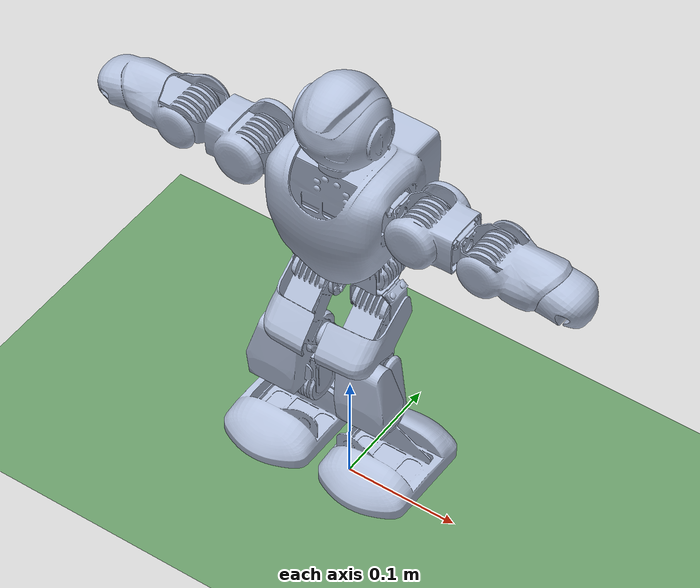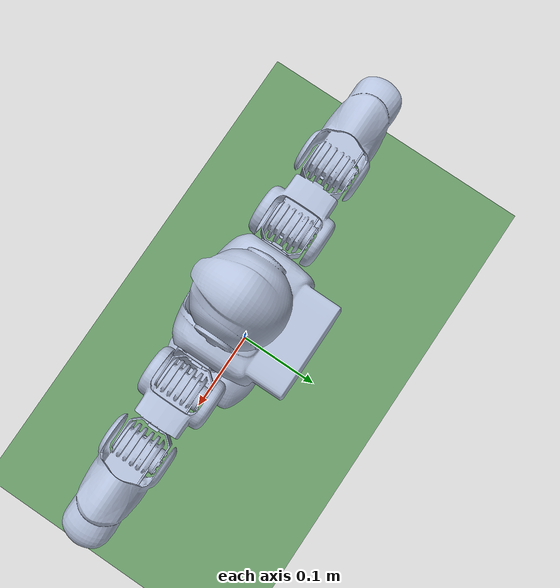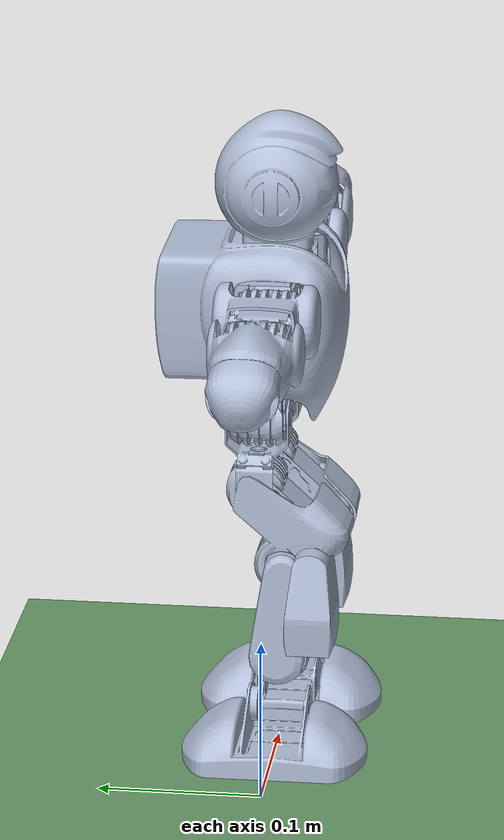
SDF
<?xml version="1.0" ?>
<sdf version="1.8">
  <world name="alpha1s_world">

    <!-- ── Plugins del mundo ── -->
    <plugin filename="ignition-gazebo-physics-system"
            name="gz::sim::systems::Physics"/>
    <plugin filename="ignition-gazebo-scene-broadcaster-system"
            name="gz::sim::systems::SceneBroadcaster"/>
    <plugin filename="ignition-gazebo-user-commands-system"
            name="gz::sim::systems::UserCommands"/>
    <plugin filename="ignition-gazebo-imu-system"
            name="gz::sim::systems::Imu"/>
    <plugin filename="ignition-gazebo-sensors-system"
            name="gz::sim::systems::Sensors">
      <render_engine>ogre</render_engine>
    </plugin>
    <plugin filename="ignition-gazebo-contact-system"
            name="gz::sim::systems::Contact"/>

    <!-- ── Luz ── -->
    <light type="directional" name="sun">
      <cast_shadows>false</cast_shadows>
      <pose>0 0 10 0 0 0</pose>
      <diffuse>1 1 1 1</diffuse>
      <specular>0.8 0.8 0.8 1</specular>
      <attenuation>
        <range>1000</range><constant>1.0</constant>
        <linear>0.0</linear><quadratic>0.0</quadratic>
      </attenuation>
      <direction>0 0 -1</direction>
    </light>
    <light type="directional" name="fill">
      <cast_shadows>false</cast_shadows>
      <pose>0 0 5 0 0 0</pose>
      <diffuse>0.6 0.6 0.6 1</diffuse>
      <specular>0.0 0.0 0.0 1</specular>
      <attenuation>
        <range>1000</range><constant>1.0</constant>
        <linear>0.0</linear><quadratic>0.0</quadratic>
      </attenuation>
      <direction>0 0.5 -0.5</direction>
    </light>

    <!-- ── Suelo ── -->
    <model name="ground_plane">
      <static>true</static>
      <link name="link">
        <collision name="collision">
          <geometry><plane><normal>0 0 1</normal><size>100 100</size></plane></geometry>
          <surface><friction><ode><mu>1.0</mu><mu2>1.0</mu2></ode></friction></surface>
        </collision>
        <visual name="visual">
          <geometry><plane><normal>0 0 1</normal><size>100 100</size></plane></geometry>
          <material>
            <ambient>0.4 0.6 0.4 1</ambient>
            <diffuse>0.4 0.6 0.4 1</diffuse>
            <specular>0.1 0.1 0.1 1</specular>
          </material>
        </visual>
      </link>
    </model>

    <!-- ================================================================
         ALPHA 1S ROBOT
         ================================================================ -->
    <model name="alpha1s">
      <pose>0 0 0.30 0 0 0</pose>
      <self_collide>false</self_collide>

      <!-- ── BASE LINK (torso) ── -->
      <link name="base_link">
        <pose>0 0 0 0 0 0</pose>
        <inertial>
          <mass>0.5923</mass>
          <inertia><ixx>0.003120</ixx><ixy>0</ixy><ixz>0</ixz>
                   <iyy>0.001890</iyy><iyz>0</iyz><izz>0.002410</izz></inertia>
        </inertial>
        <visual name="visual">
          <geometry><mesh><uri>model://alpha1s_bringup/meshes/visual/base_link.stl</uri></mesh></geometry>
          <material>
            <ambient>0.7 0.75 0.85 1</ambient>
            <diffuse>0.7 0.75 0.85 1</diffuse>
            <specular>0.4 0.4 0.4 1</specular>
          </material>
        </visual>
        <collision name="collision">
          <pose>0 -0.005 0 0 0 0</pose>
          <geometry>
            <sphere>
              <radius>0.08</radius>
            </sphere>
          </geometry>
        </collision>

        <!-- IMU sensor -->
        <sensor name="imu_sensor" type="imu">
          <always_on>1</always_on>
          <update_rate>200</update_rate>
          <topic>/alpha1s/imu</topic>
          <imu>
            <angular_velocity>
              <x><noise type="gaussian"><mean>0</mean><stddev>0.002</stddev></noise></x>
              <y><noise type="gaussian"><mean>0</mean><stddev>0.002</stddev></noise></y>
              <z><noise type="gaussian"><mean>0</mean><stddev>0.002</stddev></noise></z>
            </angular_velocity>
            <linear_acceleration>
              <x><noise type="gaussian"><mean>0</mean><stddev>0.017</stddev></noise></x>
              <y><noise type="gaussian"><mean>0</mean><stddev>0.017</stddev></noise></y>
              <z><noise type="gaussian"><mean>0</mean><stddev>0.017</stddev></noise></z>
            </linear_acceleration>
          </imu>
        </sensor>
      </link>

      <!-- ── CABEZA ── -->
      <link name="Head_link">
        <pose relative_to="neck_joint">0 0 0 0 0 0</pose>
        <inertial><mass>0.2257</mass>
          <inertia><ixx>0.000520</ixx><ixy>0</ixy><ixz>0</ixz>
                   <iyy>0.000480</iyy><iyz>0</iyz><izz>0.000310</izz></inertia>
        </inertial>
        <visual name="visual">
          <geometry><mesh><uri>model://alpha1s_bringup/meshes/visual/Head_link.stl</uri></mesh></geometry>
          <material>
            <ambient>0.7 0.75 0.85 1</ambient>
            <diffuse>0.7 0.75 0.85 1</diffuse>
            <specular>0.4 0.4 0.4 1</specular>
          </material>
        </visual>
        <collision name="collision">
          <geometry><mesh><uri>model://alpha1s_bringup/meshes/collision/Head_link.stl</uri></mesh></geometry>
        </collision>
      </link>
      <joint name="neck_joint" type="revolute">
        <pose relative_to="base_link">-0.000228 -0.009340 0.057200 0 0 0</pose>
        <parent>base_link</parent><child>Head_link</child>
        <axis><xyz>0 0 1</xyz>
          <limit><lower>-1.047</lower><upper>1.047</upper><effort>2.5</effort><velocity>6.28</velocity></limit>
          <dynamics><damping>0.05</damping><friction>0.01</friction></dynamics>
        </axis>
      </joint>

      <!-- ── BRAZO IZQUIERDO ── -->
      <link name="l_shoulder_link">
        <pose relative_to="l_shoulder_joint">0 0 0 0 0 0</pose>
        <inertial><mass>0.0613</mass>
          <inertia><ixx>0.000048</ixx><ixy>0</ixy><ixz>0</ixz>
                   <iyy>0.000052</iyy><iyz>0</iyz><izz>0.000031</izz></inertia>
        </inertial>
        <visual name="visual"><geometry><mesh><uri>model://alpha1s_bringup/meshes/visual/l_shoulder_link.stl</uri></mesh></geometry>          <material>
            <ambient>0.7 0.75 0.85 1</ambient>
            <diffuse>0.7 0.75 0.85 1</diffuse>
            <specular>0.4 0.4 0.4 1</specular>
          </material></visual>
        <collision name="collision"><geometry><mesh><uri>model://alpha1s_bringup/meshes/collision/l_shoulder_link.stl</uri></mesh></geometry></collision>
      </link>
      <joint name="l_shoulder_joint" type="revolute">
        <pose relative_to="base_link">0.055000 -0.011620 0.029880 0 0 0</pose>
        <parent>base_link</parent><child>l_shoulder_link</child>
        <axis><xyz>1 0 0</xyz>
          <limit><lower>-1.745</lower><upper>1.745</upper><effort>2.5</effort><velocity>6.28</velocity></limit>
          <dynamics><damping>0.05</damping><friction>0.01</friction></dynamics>
        </axis>
      </joint>

      <link name="l_arm_link">
        <pose relative_to="l_arm_joint">0 0 0 0 0 0</pose>
        <inertial><mass>0.0787</mass>
          <inertia><ixx>0.000180</ixx><ixy>0</ixy><ixz>0</ixz>
                   <iyy>0.000120</iyy><iyz>0</iyz><izz>0.000095</izz></inertia>
        </inertial>
        <visual name="visual"><geometry><mesh><uri>model://alpha1s_bringup/meshes/visual/l_arm_link.stl</uri></mesh></geometry>          <material>
            <ambient>0.7 0.75 0.85 1</ambient>
            <diffuse>0.7 0.75 0.85 1</diffuse>
            <specular>0.4 0.4 0.4 1</specular>
          </material></visual>
        <collision name="collision"><geometry><mesh><uri>model://alpha1s_bringup/meshes/collision/l_arm_link.stl</uri></mesh></geometry></collision>
      </link>
      <joint name="l_arm_joint" type="revolute">
        <pose relative_to="l_shoulder_link">0.021170 0.018730 -0.000040 0 0 0</pose>
        <parent>l_shoulder_link</parent><child>l_arm_link</child>
        <axis><xyz>0 1 0</xyz>
          <limit><lower>-1.571</lower><upper>1.571</upper><effort>2.5</effort><velocity>6.28</velocity></limit>
          <dynamics><damping>0.05</damping><friction>0.01</friction></dynamics>
        </axis>
      </joint>

      <link name="l_forearm_link">
        <pose relative_to="l_elbow_joint">0 0 0 0 0 0</pose>
        <inertial><mass>0.1040</mass>
          <inertia><ixx>0.000210</ixx><ixy>0</ixy><ixz>0</ixz>
                   <iyy>0.000310</iyy><iyz>0</iyz><izz>0.000140</izz></inertia>
        </inertial>
        <visual name="visual"><geometry><mesh><uri>model://alpha1s_bringup/meshes/visual/l_forearm_link.stl</uri></mesh></geometry>          <material>
            <ambient>0.7 0.75 0.85 1</ambient>
            <diffuse>0.7 0.75 0.85 1</diffuse>
            <specular>0.4 0.4 0.4 1</specular>
          </material></visual>
        <collision name="collision"><geometry><mesh><uri>model://alpha1s_bringup/meshes/collision/l_forearm_link.stl</uri></mesh></geometry></collision>
      </link>
      <joint name="l_elbow_joint" type="revolute">
        <pose relative_to="l_arm_link">0.059180 -0.003730 -0.000390 0 0 0</pose>
        <parent>l_arm_link</parent><child>l_forearm_link</child>
        <axis><xyz>0 1 0</xyz>
          <limit><lower>-1.571</lower><upper>1.571</upper><effort>2.5</effort><velocity>6.28</velocity></limit>
          <dynamics><damping>0.05</damping><friction>0.01</friction></dynamics>
        </axis>
      </joint>

      <!-- ── BRAZO DERECHO ── -->
      <link name="r_shoulder_link">
        <pose relative_to="r_shoulder_joint">0 0 0 0 0 0</pose>
        <inertial><mass>0.0613</mass>
          <inertia><ixx>0.000048</ixx><ixy>0</ixy><ixz>0</ixz>
                   <iyy>0.000052</iyy><iyz>0</iyz><izz>0.000031</izz></inertia>
        </inertial>
        <visual name="visual"><geometry><mesh><uri>model://alpha1s_bringup/meshes/visual/r_shoulder_link.stl</uri></mesh></geometry>          <material>
            <ambient>0.7 0.75 0.85 1</ambient>
            <diffuse>0.7 0.75 0.85 1</diffuse>
            <specular>0.4 0.4 0.4 1</specular>
          </material></visual>
        <collision name="collision"><geometry><mesh><uri>model://alpha1s_bringup/meshes/collision/r_shoulder_link.stl</uri></mesh></geometry></collision>
      </link>
      <joint name="r_shoulder_joint" type="revolute">
        <pose relative_to="base_link">-0.055000 -0.011620 0.029880 0 0 0</pose>
        <parent>base_link</parent><child>r_shoulder_link</child>
        <axis><xyz>1 0 0</xyz>
          <limit><lower>-1.745</lower><upper>1.745</upper><effort>2.5</effort><velocity>6.28</velocity></limit>
          <dynamics><damping>0.05</damping><friction>0.01</friction></dynamics>
        </axis>
      </joint>

      <link name="r_arm_link">
        <pose relative_to="r_arm_joint">0 0 0 0 0 0</pose>
        <inertial><mass>0.0787</mass>
          <inertia><ixx>0.000180</ixx><ixy>0</ixy><ixz>0</ixz>
                   <iyy>0.000120</iyy><iyz>0</iyz><izz>0.000095</izz></inertia>
        </inertial>
        <visual name="visual"><geometry><mesh><uri>model://alpha1s_bringup/meshes/visual/r_arm_link.stl</uri></mesh></geometry>          <material>
            <ambient>0.7 0.75 0.85 1</ambient>
            <diffuse>0.7 0.75 0.85 1</diffuse>
            <specular>0.4 0.4 0.4 1</specular>
          </material></visual>
        <collision name="collision"><geometry><mesh><uri>model://alpha1s_bringup/meshes/collision/r_arm_link.stl</uri></mesh></geometry></collision>
      </link>
      <joint name="r_arm_joint" type="revolute">
        <pose relative_to="r_shoulder_link">-0.021170 0.018730 -0.000040 0 0 0</pose>
        <parent>r_shoulder_link</parent><child>r_arm_link</child>
        <axis><xyz>0 1 0</xyz>
          <limit><lower>-1.571</lower><upper>1.571</upper><effort>2.5</effort><velocity>6.28</velocity></limit>
          <dynamics><damping>0.05</damping><friction>0.01</friction></dynamics>
        </axis>
      </joint>

      <link name="r_forearm_link">
        <pose relative_to="r_elbow_joint">0 0 0 0 0 0</pose>
        <inertial><mass>0.1040</mass>
          <inertia><ixx>0.000210</ixx><ixy>0</ixy><ixz>0</ixz>
                   <iyy>0.000310</iyy><iyz>0</iyz><izz>0.000140</izz></inertia>
        </inertial>
        <visual name="visual"><geometry><mesh><uri>model://alpha1s_bringup/meshes/visual/r_forearm_link.stl</uri></mesh></geometry>          <material>
            <ambient>0.7 0.75 0.85 1</ambient>
            <diffuse>0.7 0.75 0.85 1</diffuse>
            <specular>0.4 0.4 0.4 1</specular>
          </material></visual>
        <collision name="collision"><geometry><mesh><uri>model://alpha1s_bringup/meshes/collision/r_forearm_link.stl</uri></mesh></geometry></collision>
      </link>
      <joint name="r_elbow_joint" type="revolute">
        <pose relative_to="r_arm_link">-0.059180 -0.003730 -0.000390 0 0 0</pose>
        <parent>r_arm_link</parent><child>r_forearm_link</child>
        <axis><xyz>0 1 0</xyz>
          <limit><lower>-1.571</lower><upper>1.571</upper><effort>2.5</effort><velocity>6.28</velocity></limit>
          <dynamics><damping>0.05</damping><friction>0.01</friction></dynamics>
        </axis>
      </joint>

      <!-- ── PIERNA IZQUIERDA ── -->
      <link name="l_hip_roll_link">
        <pose relative_to="l_hip_roll_joint">0 0 0 0 0 0</pose>
        <inertial><mass>0.0618</mass>
          <inertia><ixx>0.000052</ixx><ixy>0</ixy><ixz>0</ixz>
                   <iyy>0.000048</iyy><iyz>0</iyz><izz>0.000038</izz></inertia>
        </inertial>
        <visual name="visual"><geometry><mesh><uri>model://alpha1s_bringup/meshes/visual/l_hip_roll_link.stl</uri></mesh></geometry>          <material>
            <ambient>0.7 0.75 0.85 1</ambient>
            <diffuse>0.7 0.75 0.85 1</diffuse>
            <specular>0.4 0.4 0.4 1</specular>
          </material></visual>
        <collision name="collision"><geometry><mesh><uri>model://alpha1s_bringup/meshes/collision/l_hip_roll_link.stl</uri></mesh></geometry></collision>
      </link>
      <joint name="l_hip_roll_joint" type="revolute">
        <pose relative_to="base_link">0.026530 -0.018220 -0.045170 0 0 0</pose>
        <parent>base_link</parent><child>l_hip_roll_link</child>
        <axis><xyz>0 1 0</xyz>
          <limit><lower>-1.571</lower><upper>0.524</upper><effort>2.5</effort><velocity>6.28</velocity></limit>
          <dynamics><damping>0.05</damping><friction>0.01</friction></dynamics>
        </axis>
      </joint>

      <link name="l_knee_link">
        <pose relative_to="l_hip_pitch_joint">0 0 0 0 0 0</pose>
        <inertial><mass>0.1035</mass>
          <inertia><ixx>0.000310</ixx><ixy>0</ixy><ixz>0</ixz>
                   <iyy>0.000850</iyy><iyz>0</iyz><izz>0.000620</izz></inertia>
        </inertial>
        <visual name="visual"><geometry><mesh><uri>model://alpha1s_bringup/meshes/visual/l_knee_link.stl</uri></mesh></geometry>          <material>
            <ambient>0.7 0.75 0.85 1</ambient>
            <diffuse>0.7 0.75 0.85 1</diffuse>
            <specular>0.4 0.4 0.4 1</specular>
          </material></visual>
        <collision name="collision"><geometry><mesh><uri>model://alpha1s_bringup/meshes/collision/l_knee_link.stl</uri></mesh></geometry></collision>
      </link>
      <joint name="l_hip_pitch_joint" type="revolute">
        <pose relative_to="l_hip_roll_link">-0.013140 0.014840 -0.044380 0 0 0</pose>
        <parent>l_hip_roll_link</parent><child>l_knee_link</child>
        <axis><xyz>1 0 0</xyz>
          <limit><lower>-1.571</lower><upper>1.571</upper><effort>2.5</effort><velocity>6.28</velocity></limit>
          <dynamics><damping>0.05</damping><friction>0.01</friction></dynamics>
        </axis>
      </joint>

      <!-- RENAMED: l_ankle_pitch_joint (link) → l_lower_leg_link -->
      <link name="l_lower_leg_link">
        <pose relative_to="l_knee_joint">0 0 0 0 0 0</pose>
        <inertial><mass>0.0493</mass>
          <inertia><ixx>0.000065</ixx><ixy>0</ixy><ixz>0</ixz>
                   <iyy>0.000082</iyy><iyz>0</iyz><izz>0.000058</izz></inertia>
        </inertial>
        <visual name="visual"><geometry><mesh><uri>model://alpha1s_bringup/meshes/visual/l_lower_leg_link.stl</uri></mesh></geometry>          <material>
            <ambient>0.7 0.75 0.85 1</ambient>
            <diffuse>0.7 0.75 0.85 1</diffuse>
            <specular>0.4 0.4 0.4 1</specular>
          </material></visual>
        <collision name="collision"><geometry><mesh><uri>model://alpha1s_bringup/meshes/collision/l_lower_leg_link.stl</uri></mesh></geometry></collision>
      </link>
      <joint name="l_knee_joint" type="revolute">
        <pose relative_to="l_knee_link">-0.005660 -0.014250 -0.044230 0 0 0</pose>
        <parent>l_knee_link</parent><child>l_lower_leg_link</child>
        <axis><xyz>1 0 0</xyz>
          <limit><lower>-1.325</lower><upper>1.571</upper><effort>2.5</effort><velocity>6.28</velocity></limit>
          <dynamics><damping>0.05</damping><friction>0.01</friction></dynamics>
        </axis>
      </joint>

      <link name="l_ankle_link">
        <pose relative_to="l_ankle_pitch_joint">0 0 0 0 0 0</pose>
        <inertial><mass>0.0529</mass>
          <inertia><ixx>0.000048</ixx><ixy>0</ixy><ixz>0</ixz>
                   <iyy>0.000062</iyy><iyz>0</iyz><izz>0.000041</izz></inertia>
        </inertial>
        <visual name="visual"><geometry><mesh><uri>model://alpha1s_bringup/meshes/visual/l_ankle_link.stl</uri></mesh></geometry>          <material>
            <ambient>0.7 0.75 0.85 1</ambient>
            <diffuse>0.7 0.75 0.85 1</diffuse>
            <specular>0.4 0.4 0.4 1</specular>
          </material></visual>
        <collision name="collision"><geometry><mesh><uri>model://alpha1s_bringup/meshes/collision/l_ankle_link.stl</uri></mesh></geometry></collision>
      </link>
      <!-- RENAMED: l_ankle_pitch_joint_joint → l_ankle_pitch_joint -->
      <joint name="l_ankle_pitch_joint" type="revolute">
        <pose relative_to="l_lower_leg_link">0.001250 0.002250 -0.058450 0 0 0</pose>
        <parent>l_lower_leg_link</parent><child>l_ankle_link</child>
        <axis><xyz>1 0 0</xyz>
          <limit><lower>-1.047</lower><upper>1.047</upper><effort>2.5</effort><velocity>6.28</velocity></limit>
          <dynamics><damping>0.05</damping><friction>0.01</friction></dynamics>
        </axis>
      </joint>

      <link name="l_foot_link">
        <pose relative_to="l_ankle_roll_joint">0 0 0 0 0 0</pose>
        <inertial><mass>0.1211</mass>
          <inertia><ixx>0.000240</ixx><ixy>0</ixy><ixz>0</ixz>
                   <iyy>0.000380</iyy><iyz>0</iyz><izz>0.000190</izz></inertia>
        </inertial>
        <visual name="visual"><geometry><mesh><uri>model://alpha1s_bringup/meshes/visual/l_foot_link.stl</uri></mesh></geometry>          <material>
            <ambient>0.7 0.75 0.85 1</ambient>
            <diffuse>0.7 0.75 0.85 1</diffuse>
            <specular>0.4 0.4 0.4 1</specular>
          </material></visual>
        <collision name="collision">
          <geometry><mesh><uri>model://alpha1s_bringup/meshes/collision/l_foot_link.stl</uri></mesh></geometry>
          <surface><friction><ode><mu>0.9</mu><mu2>0.8</mu2></ode></friction></surface>
        </collision>
        <!-- Sensor de contacto pie izquierdo -->
        <sensor name="l_foot_contact_sensor" type="contact">
          <always_on>true</always_on>
          <update_rate>100</update_rate>
          <topic>foot_contact/left</topic>
          <contact>
            <collision>collision</collision>
          </contact>
        </sensor>
      </link>
      <joint name="l_ankle_roll_joint" type="revolute">
        <pose relative_to="l_ankle_link">0.012350 -0.012880 -0.037490 0 0 0</pose>
        <parent>l_ankle_link</parent><child>l_foot_link</child>
        <axis><xyz>0 1 0</xyz>
          <limit><lower>-0.349</lower><upper>1.396</upper><effort>2.5</effort><velocity>6.28</velocity></limit>
          <dynamics><damping>0.05</damping><friction>0.01</friction></dynamics>
        </axis>
      </joint>

      <!-- ── PIERNA DERECHA ── -->
      <link name="r_hip_roll_link">
        <pose relative_to="r_hip_roll_joint">0 0 0 0 0 0</pose>
        <inertial><mass>0.0618</mass>
          <inertia><ixx>0.000052</ixx><ixy>0</ixy><ixz>0</ixz>
                   <iyy>0.000048</iyy><iyz>0</iyz><izz>0.000038</izz></inertia>
        </inertial>
        <visual name="visual"><geometry><mesh><uri>model://alpha1s_bringup/meshes/visual/r_hip_roll_link.stl</uri></mesh></geometry>          <material>
            <ambient>0.7 0.75 0.85 1</ambient>
            <diffuse>0.7 0.75 0.85 1</diffuse>
            <specular>0.4 0.4 0.4 1</specular>
          </material></visual>
        <collision name="collision"><geometry><mesh><uri>model://alpha1s_bringup/meshes/collision/r_hip_roll_link.stl</uri></mesh></geometry></collision>
      </link>
      <joint name="r_hip_roll_joint" type="revolute">
        <pose relative_to="base_link">-0.026530 -0.018220 -0.045170 0 0 0</pose>
        <parent>base_link</parent><child>r_hip_roll_link</child>
        <axis><xyz>0 1 0</xyz>
          <limit><lower>-0.524</lower><upper>1.571</upper><effort>2.5</effort><velocity>6.28</velocity></limit>
          <dynamics><damping>0.05</damping><friction>0.01</friction></dynamics>
        </axis>
      </joint>

      <link name="r_knee_link">
        <pose relative_to="r_hip_pitch_joint">0 0 0 0 0 0</pose>
        <inertial><mass>0.1035</mass>
          <inertia><ixx>0.000310</ixx><ixy>0</ixy><ixz>0</ixz>
                   <iyy>0.000850</iyy><iyz>0</iyz><izz>0.000620</izz></inertia>
        </inertial>
        <visual name="visual"><geometry><mesh><uri>model://alpha1s_bringup/meshes/visual/r_knee_link.stl</uri></mesh></geometry>          <material>
            <ambient>0.7 0.75 0.85 1</ambient>
            <diffuse>0.7 0.75 0.85 1</diffuse>
            <specular>0.4 0.4 0.4 1</specular>
          </material></visual>
        <collision name="collision"><geometry><mesh><uri>model://alpha1s_bringup/meshes/collision/r_knee_link.stl</uri></mesh></geometry></collision>
      </link>
      <joint name="r_hip_pitch_joint" type="revolute">
        <pose relative_to="r_hip_roll_link">0.013140 0.014840 -0.044380 0 0 0</pose>
        <parent>r_hip_roll_link</parent><child>r_knee_link</child>
        <axis><xyz>1 0 0</xyz>
          <limit><lower>-1.571</lower><upper>1.571</upper><effort>2.5</effort><velocity>6.28</velocity></limit>
          <dynamics><damping>0.05</damping><friction>0.01</friction></dynamics>
        </axis>
      </joint>

      <!-- RENAMED: r_ankle_pitch_joint (link) → r_lower_leg_link -->
      <link name="r_lower_leg_link">
        <pose relative_to="r_knee_joint">0 0 0 0 0 0</pose>
        <inertial><mass>0.0493</mass>
          <inertia><ixx>0.000065</ixx><ixy>0</ixy><ixz>0</ixz>
                   <iyy>0.000082</iyy><iyz>0</iyz><izz>0.000058</izz></inertia>
        </inertial>
        <visual name="visual"><geometry><mesh><uri>model://alpha1s_bringup/meshes/visual/r_lower_leg_link.stl</uri></mesh></geometry>          <material>
            <ambient>0.7 0.75 0.85 1</ambient>
            <diffuse>0.7 0.75 0.85 1</diffuse>
            <specular>0.4 0.4 0.4 1</specular>
          </material></visual>
        <collision name="collision"><geometry><mesh><uri>model://alpha1s_bringup/meshes/collision/r_lower_leg_link.stl</uri></mesh></geometry></collision>
      </link>
      <joint name="r_knee_joint" type="revolute">
        <pose relative_to="r_knee_link">0.005660 -0.014250 -0.044230 0 0 0</pose>
        <parent>r_knee_link</parent><child>r_lower_leg_link</child>
        <axis><xyz>1 0 0</xyz>
          <limit><lower>-1.325</lower><upper>1.571</upper><effort>2.5</effort><velocity>6.28</velocity></limit>
          <dynamics><damping>0.05</damping><friction>0.01</friction></dynamics>
        </axis>
      </joint>

      <link name="r_ankle_link">
        <pose relative_to="r_ankle_pitch_joint">0 0 0 0 0 0</pose>
        <inertial><mass>0.0529</mass>
          <inertia><ixx>0.000048</ixx><ixy>0</ixy><ixz>0</ixz>
                   <iyy>0.000062</iyy><iyz>0</iyz><izz>0.000041</izz></inertia>
        </inertial>
        <visual name="visual"><geometry><mesh><uri>model://alpha1s_bringup/meshes/visual/r_ankle_link.stl</uri></mesh></geometry>          <material>
            <ambient>0.7 0.75 0.85 1</ambient>
            <diffuse>0.7 0.75 0.85 1</diffuse>
            <specular>0.4 0.4 0.4 1</specular>
          </material></visual>
        <collision name="collision"><geometry><mesh><uri>model://alpha1s_bringup/meshes/collision/r_ankle_link.stl</uri></mesh></geometry></collision>
      </link>
      <!-- RENAMED: r_ankle_pitch_joint_joint → r_ankle_pitch_joint -->
      <joint name="r_ankle_pitch_joint" type="revolute">
        <pose relative_to="r_lower_leg_link">-0.001250 0.002250 -0.058450 0 0 0</pose>
        <parent>r_lower_leg_link</parent><child>r_ankle_link</child>
        <axis><xyz>1 0 0</xyz>
          <limit><lower>-1.047</lower><upper>1.047</upper><effort>2.5</effort><velocity>6.28</velocity></limit>
          <dynamics><damping>0.05</damping><friction>0.01</friction></dynamics>
        </axis>
      </joint>

      <link name="r_foot_link">
        <pose relative_to="r_ankle_roll_joint">0 0 0 0 0 0</pose>
        <inertial><mass>0.1211</mass>
          <inertia><ixx>0.000240</ixx><ixy>0</ixy><ixz>0</ixz>
                   <iyy>0.000380</iyy><iyz>0</iyz><izz>0.000190</izz></inertia>
        </inertial>
        <visual name="visual"><geometry><mesh><uri>model://alpha1s_bringup/meshes/visual/r_foot_link.stl</uri></mesh></geometry>          <material>
            <ambient>0.7 0.75 0.85 1</ambient>
            <diffuse>0.7 0.75 0.85 1</diffuse>
            <specular>0.4 0.4 0.4 1</specular>
          </material></visual>
        <collision name="collision">
          <geometry><mesh><uri>model://alpha1s_bringup/meshes/collision/r_foot_link.stl</uri></mesh></geometry>
          <surface><friction><ode><mu>0.9</mu><mu2>0.8</mu2></ode></friction></surface>
        </collision>
        <!-- Sensor de contacto pie derecho -->
        <sensor name="r_foot_contact_sensor" type="contact">
          <always_on>true</always_on>
          <update_rate>100</update_rate>
          <topic>foot_contact/right</topic>
          <contact>
            <collision>collision</collision>
          </contact>
        </sensor>
      </link>
      <joint name="r_ankle_roll_joint" type="revolute">
        <pose relative_to="r_ankle_link">-0.012350 -0.012880 -0.037490 0 0 0</pose>
        <parent>r_ankle_link</parent><child>r_foot_link</child>
        <axis><xyz>0 1 0</xyz>
          <limit><lower>-1.396</lower><upper>0.349</upper><effort>2.5</effort><velocity>6.28</velocity></limit>
          <dynamics><damping>0.05</damping><friction>0.01</friction></dynamics>
        </axis>
      </joint>

      <!-- ================================================================
           PLUGINS DEL MODELO
           ================================================================ -->

      <!-- Joint State Publisher -->
      <plugin filename="ignition-gazebo-joint-state-publisher-system"
              name="gz::sim::systems::JointStatePublisher"/>

      <!-- Pose Publisher -->
      <plugin filename="ignition-gazebo-pose-publisher-system"
              name="gz::sim::systems::PosePublisher">
        <publish_link_pose>true</publish_link_pose>
        <publish_nested_model_pose>false</publish_nested_model_pose>
        <update_frequency>50</update_frequency>
      </plugin>

      <!-- ───── JointPositionControllers ───── -->
      <!-- Cuello (1) -->
      <plugin filename="ignition-gazebo-joint-position-controller-system"
              name="gz::sim::systems::JointPositionController">
        <joint_name>neck_joint</joint_name>
        <topic>/alpha1s/cmd/neck_joint</topic>
        <p_gain>10.0</p_gain><i_gain>0.1</i_gain><d_gain>0.5</d_gain>
        <i_max>1.0</i_max><i_min>-1.0</i_min><cmd_max>2.5</cmd_max><cmd_min>-2.5</cmd_min>
      </plugin>

      <!-- Brazos (6): shoulders, arms, elbows -->
      <plugin filename="ignition-gazebo-joint-position-controller-system"
              name="gz::sim::systems::JointPositionController">
        <joint_name>l_shoulder_joint</joint_name>
        <topic>/alpha1s/cmd/l_shoulder_joint</topic>
        <p_gain>10.0</p_gain><i_gain>0.1</i_gain><d_gain>0.5</d_gain>
        <i_max>1.0</i_max><i_min>-1.0</i_min><cmd_max>2.5</cmd_max><cmd_min>-2.5</cmd_min>
      </plugin>
      <plugin filename="ignition-gazebo-joint-position-controller-system"
              name="gz::sim::systems::JointPositionController">
        <joint_name>r_shoulder_joint</joint_name>
        <topic>/alpha1s/cmd/r_shoulder_joint</topic>
        <p_gain>10.0</p_gain><i_gain>0.1</i_gain><d_gain>0.5</d_gain>
        <i_max>1.0</i_max><i_min>-1.0</i_min><cmd_max>2.5</cmd_max><cmd_min>-2.5</cmd_min>
      </plugin>
      <plugin filename="ignition-gazebo-joint-position-controller-system"
              name="gz::sim::systems::JointPositionController">
        <joint_name>l_arm_joint</joint_name>
        <topic>/alpha1s/cmd/l_arm_joint</topic>
        <p_gain>10.0</p_gain><i_gain>0.1</i_gain><d_gain>0.5</d_gain>
        <i_max>1.0</i_max><i_min>-1.0</i_min><cmd_max>2.5</cmd_max><cmd_min>-2.5</cmd_min>
      </plugin>
      <plugin filename="ignition-gazebo-joint-position-controller-system"
              name="gz::sim::systems::JointPositionController">
        <joint_name>r_arm_joint</joint_name>
        <topic>/alpha1s/cmd/r_arm_joint</topic>
        <p_gain>10.0</p_gain><i_gain>0.1</i_gain><d_gain>0.5</d_gain>
        <i_max>1.0</i_max><i_min>-1.0</i_min><cmd_max>2.5</cmd_max><cmd_min>-2.5</cmd_min>
      </plugin>
      <plugin filename="ignition-gazebo-joint-position-controller-system"
              name="gz::sim::systems::JointPositionController">
        <joint_name>l_elbow_joint</joint_name>
        <topic>/alpha1s/cmd/l_elbow_joint</topic>
        <p_gain>10.0</p_gain><i_gain>0.1</i_gain><d_gain>0.5</d_gain>
        <i_max>1.0</i_max><i_min>-1.0</i_min><cmd_max>2.5</cmd_max><cmd_min>-2.5</cmd_min>
      </plugin>
      <plugin filename="ignition-gazebo-joint-position-controller-system"
              name="gz::sim::systems::JointPositionController">
        <joint_name>r_elbow_joint</joint_name>
        <topic>/alpha1s/cmd/r_elbow_joint</topic>
        <p_gain>10.0</p_gain><i_gain>0.1</i_gain><d_gain>0.5</d_gain>
        <i_max>1.0</i_max><i_min>-1.0</i_min><cmd_max>2.5</cmd_max><cmd_min>-2.5</cmd_min>
      </plugin>

      <!-- Caderas roll (2) -->
      <plugin filename="ignition-gazebo-joint-position-controller-system"
              name="gz::sim::systems::JointPositionController">
        <joint_name>l_hip_roll_joint</joint_name>
        <topic>/alpha1s/cmd/l_hip_roll_joint</topic>
        <p_gain>15.0</p_gain><i_gain>0.1</i_gain><d_gain>0.8</d_gain>
        <i_max>1.0</i_max><i_min>-1.0</i_min><cmd_max>2.5</cmd_max><cmd_min>-2.5</cmd_min>
      </plugin>
      <plugin filename="ignition-gazebo-joint-position-controller-system"
              name="gz::sim::systems::JointPositionController">
        <joint_name>r_hip_roll_joint</joint_name>
        <topic>/alpha1s/cmd/r_hip_roll_joint</topic>
        <p_gain>15.0</p_gain><i_gain>0.1</i_gain><d_gain>0.8</d_gain>
        <i_max>1.0</i_max><i_min>-1.0</i_min><cmd_max>2.5</cmd_max><cmd_min>-2.5</cmd_min>
      </plugin>

      <!-- Caderas pitch (2) -->
      <plugin filename="ignition-gazebo-joint-position-controller-system"
              name="gz::sim::systems::JointPositionController">
        <joint_name>l_hip_pitch_joint</joint_name>
        <topic>/alpha1s/cmd/l_hip_pitch_joint</topic>
        <p_gain>15.0</p_gain><i_gain>0.1</i_gain><d_gain>0.8</d_gain>
        <i_max>1.0</i_max><i_min>-1.0</i_min><cmd_max>2.5</cmd_max><cmd_min>-2.5</cmd_min>
      </plugin>
      <plugin filename="ignition-gazebo-joint-position-controller-system"
              name="gz::sim::systems::JointPositionController">
        <joint_name>r_hip_pitch_joint</joint_name>
        <topic>/alpha1s/cmd/r_hip_pitch_joint</topic>
        <p_gain>15.0</p_gain><i_gain>0.1</i_gain><d_gain>0.8</d_gain>
        <i_max>1.0</i_max><i_min>-1.0</i_min><cmd_max>2.5</cmd_max><cmd_min>-2.5</cmd_min>
      </plugin>

      <!-- Rodillas (2) -->
      <plugin filename="ignition-gazebo-joint-position-controller-system"
              name="gz::sim::systems::JointPositionController">
        <joint_name>l_knee_joint</joint_name>
        <topic>/alpha1s/cmd/l_knee_joint</topic>
        <p_gain>15.0</p_gain><i_gain>0.1</i_gain><d_gain>0.8</d_gain>
        <i_max>1.0</i_max><i_min>-1.0</i_min><cmd_max>2.5</cmd_max><cmd_min>-2.5</cmd_min>
      </plugin>
      <plugin filename="ignition-gazebo-joint-position-controller-system"
              name="gz::sim::systems::JointPositionController">
        <joint_name>r_knee_joint</joint_name>
        <topic>/alpha1s/cmd/r_knee_joint</topic>
        <p_gain>15.0</p_gain><i_gain>0.1</i_gain><d_gain>0.8</d_gain>
        <i_max>1.0</i_max><i_min>-1.0</i_min><cmd_max>2.5</cmd_max><cmd_min>-2.5</cmd_min>
      </plugin>

      <!-- Tobillos pitch (2) -->
      <plugin filename="ignition-gazebo-joint-position-controller-system"
              name="gz::sim::systems::JointPositionController">
        <joint_name>l_ankle_pitch_joint</joint_name>
        <topic>/alpha1s/cmd/l_ankle_pitch_joint</topic>
        <p_gain>12.0</p_gain><i_gain>0.1</i_gain><d_gain>0.5</d_gain>
        <i_max>1.0</i_max><i_min>-1.0</i_min><cmd_max>2.5</cmd_max><cmd_min>-2.5</cmd_min>
      </plugin>
      <plugin filename="ignition-gazebo-joint-position-controller-system"
              name="gz::sim::systems::JointPositionController">
        <joint_name>r_ankle_pitch_joint</joint_name>
        <topic>/alpha1s/cmd/r_ankle_pitch_joint</topic>
        <p_gain>12.0</p_gain><i_gain>0.1</i_gain><d_gain>0.5</d_gain>
        <i_max>1.0</i_max><i_min>-1.0</i_min><cmd_max>2.5</cmd_max><cmd_min>-2.5</cmd_min>
      </plugin>

      <!-- Tobillos roll (2) -->
      <plugin filename="ignition-gazebo-joint-position-controller-system"
              name="gz::sim::systems::JointPositionController">
        <joint_name>l_ankle_roll_joint</joint_name>
        <topic>/alpha1s/cmd/l_ankle_roll_joint</topic>
        <p_gain>12.0</p_gain><i_gain>0.1</i_gain><d_gain>0.5</d_gain>
        <i_max>1.0</i_max><i_min>-1.0</i_min><cmd_max>2.5</cmd_max><cmd_min>-2.5</cmd_min>
      </plugin>
      <plugin filename="ignition-gazebo-joint-position-controller-system"
              name="gz::sim::systems::JointPositionController">
        <joint_name>r_ankle_roll_joint</joint_name>
        <topic>/alpha1s/cmd/r_ankle_roll_joint</topic>
        <p_gain>12.0</p_gain><i_gain>0.1</i_gain><d_gain>0.5</d_gain>
        <i_max>1.0</i_max><i_min>-1.0</i_min><cmd_max>2.5</cmd_max><cmd_min>-2.5</cmd_min>
      </plugin>

    </model>
  </world>
</sdf>
